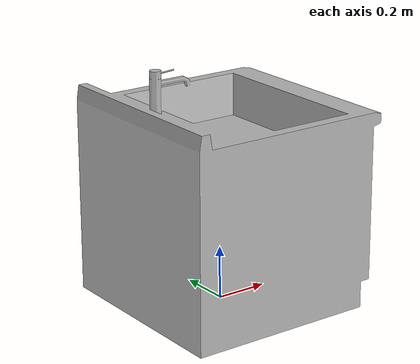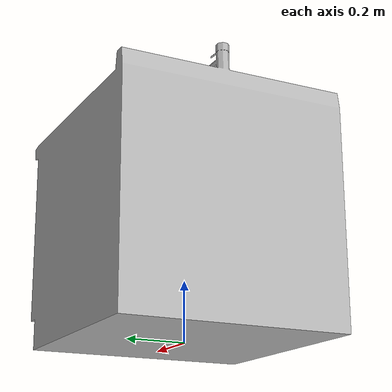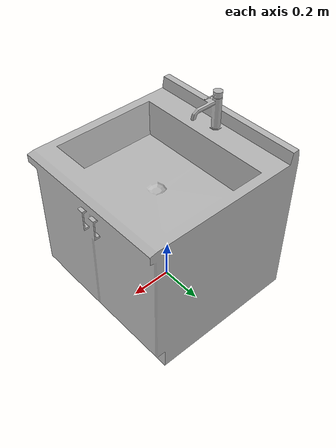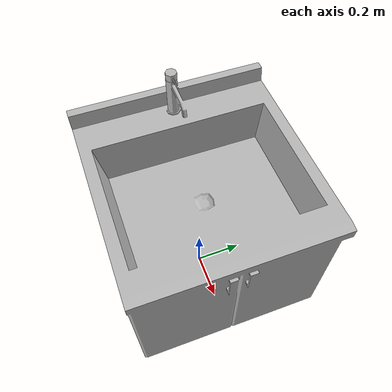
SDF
<?xml version="1.0" ?>
<sdf version="1.5">
  <model name="KitchenSink">
    <link name="link">
      <pose>0 0 0 0 0 0</pose>

        <visual name="visual">
          <geometry>
            <mesh><uri>model://KitchenSink/meshes/kitchenSink.obj</uri></mesh>
          </geometry>
        </visual>

        <collision name="collision">
          <geometry>
            <mesh><uri>model://KitchenSink/meshes/kitchenSink.obj</uri></mesh>
          </geometry>
        </collision>

    </link>
  </model>
</sdf>
